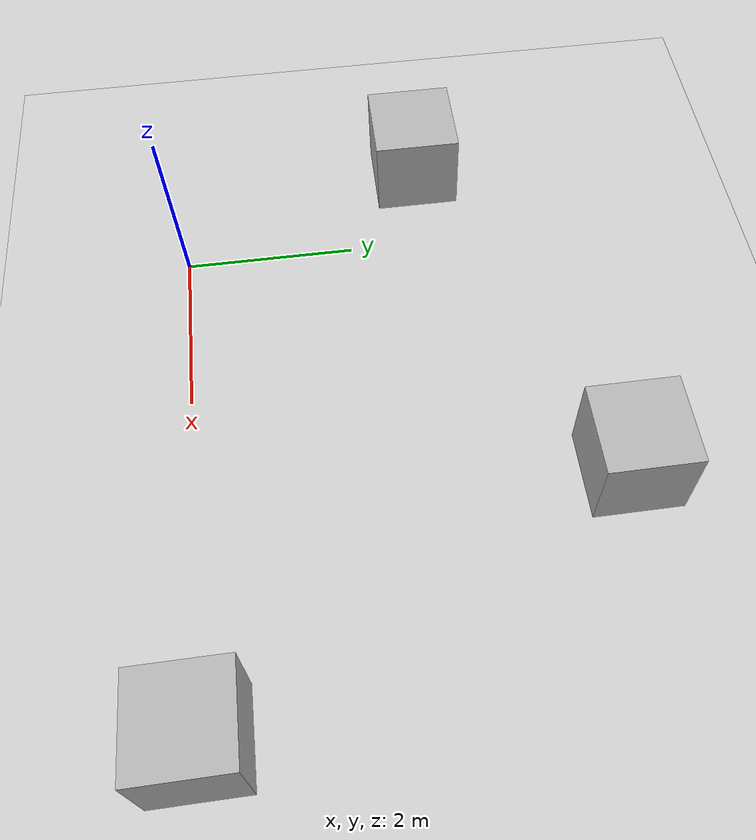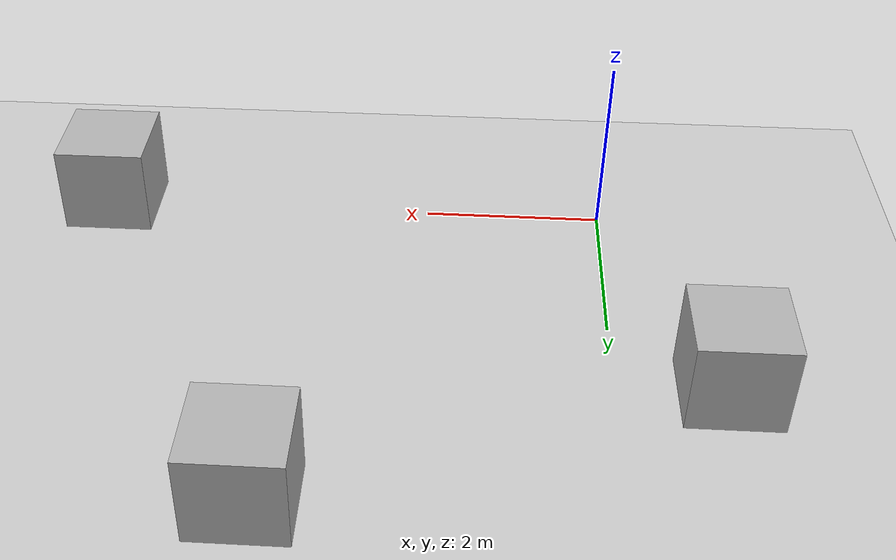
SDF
<?xml version="1.0"?>
<sdf version="1.8">
  <world name="leo_empty">
    <physics name="1ms" type="ignored">
      <max_step_size>0.001</max_step_size>
      <real_time_factor>1.0</real_time_factor>
    </physics>

    <plugin
      filename="ignition-gazebo-physics-system"
      name="ignition::gazebo::systems::Physics">
    </plugin>
    <plugin
      filename="ignition-gazebo-sensors-system"
      name="ignition::gazebo::systems::Sensors">
      <render_engine>ogre2</render_engine>
    </plugin>
    <plugin
      filename="ignition-gazebo-scene-broadcaster-system"
      name="ignition::gazebo::systems::SceneBroadcaster">
    </plugin>
    <plugin
      filename="ignition-gazebo-user-commands-system"
      name="ignition::gazebo::systems::UserCommands">
    </plugin>
    <plugin filename="gz-sim-imu-system"
      name="gz::sim::systems::Imu">
    </plugin>

    <light name="sun" type="directional">
      <cast_shadows>true</cast_shadows>
      <pose>0 0 10 0 0 0</pose>
      <diffuse>0.8 0.8 0.8 1</diffuse>
      <specular>0.2 0.2 0.2 1</specular>
      <attenuation>
        <range>1000</range>
        <constant>0.9</constant>
        <linear>0.01</linear>
        <quadratic>0.001</quadratic>
      </attenuation>
      <direction>-0.5 0.1 -0.9</direction>
    </light>

    <model name="ground_plane">
      <static>true</static>
      <link name="link">
        <collision name="collision">
          <geometry>
            <plane>
              <normal>0 0 1</normal>
              <size>100 100</size>
            </plane>
          </geometry>
          <surface>
            <friction>
              <ode>
                <mu>50</mu>
              </ode>
              <bullet>
                <friction>1</friction>
                <friction2>1</friction2>
                <rolling_friction>0.1</rolling_friction>
              </bullet>
            </friction>
          </surface>
        </collision>
        <visual name="visual">
          <geometry>
            <plane>
              <normal>0 0 1</normal>
              <size>100 100</size>
            </plane>
          </geometry>
          <material>
            <ambient>0.8 0.8 0.8 1</ambient>
            <diffuse>0.8 0.8 0.8 1</diffuse>
            <specular>0.8 0.8 0.8 1</specular>
          </material>
        </visual>
      </link>
    </model>

    <!-- GUI-generated obstacle boxes -->

    <model name='box'>
      <pose>5.72933 0.027533 0.5 0 0 -0</pose>
      <link name='box_link'>
        <inertial>
          <inertia>
            <ixx>0.16666</ixx>
            <ixy>0</ixy>
            <ixz>0</ixz>
            <iyy>0.16666</iyy>
            <iyz>0</iyz>
            <izz>0.16666</izz>
          </inertia>
          <mass>1</mass>
          <pose>0 0 0 0 -0 0</pose>
        </inertial>
        <collision name='box_collision'>
          <geometry>
            <box>
              <size>1 1 1</size>
            </box>
          </geometry>
          <surface>
            <friction>
              <ode/>
            </friction>
            <bounce/>
            <contact/>
          </surface>
        </collision>
        <visual name='box_visual'>
          <geometry>
            <box>
              <size>1 1 1</size>
            </box>
          </geometry>
          <material>
            <ambient>0.3 0.3 0.3 1</ambient>
            <diffuse>0.7 0.7 0.7 1</diffuse>
            <specular>1 1 1 1</specular>
          </material>
        </visual>
        <pose>0 0 0 0 -0 0</pose>
        <enable_wind>false</enable_wind>
      </link>
      <static>true</static>
      <self_collide>false</self_collide>
    </model>

    <model name='box_0'>
      <pose>3.47141 4.65517 0.5 0 0 -0</pose>
      <link name='box_link'>
        <inertial>
          <inertia>
            <ixx>0.16666</ixx>
            <ixy>0</ixy>
            <ixz>0</ixz>
            <iyy>0.16666</iyy>
            <iyz>0</iyz>
            <izz>0.16666</izz>
          </inertia>
          <mass>1</mass>
          <pose>0 0 0 0 -0 0</pose>
        </inertial>
        <collision name='box_collision'>
          <geometry>
            <box>
              <size>1 1 1</size>
            </box>
          </geometry>
          <surface>
            <friction>
              <ode/>
            </friction>
            <bounce/>
            <contact/>
          </surface>
        </collision>
        <visual name='box_visual'>
          <geometry>
            <box>
              <size>1 1 1</size>
            </box>
          </geometry>
          <material>
            <ambient>0.3 0.3 0.3 1</ambient>
            <diffuse>0.7 0.7 0.7 1</diffuse>
            <specular>1 1 1 1</specular>
          </material>
        </visual>
        <pose>0 0 0 0 -0 0</pose>
        <enable_wind>false</enable_wind>
      </link>
      <static>true</static>
      <self_collide>false</self_collide>
    </model>

    <model name='box_1'>
      <pose>-1.14644 2.9291 0.5 0 0 -0</pose>
      <link name='box_link'>
        <inertial>
          <inertia>
            <ixx>0.16666</ixx>
            <ixy>0</ixy>
            <ixz>0</ixz>
            <iyy>0.16666</iyy>
            <iyz>0</iyz>
            <izz>0.16666</izz>
          </inertia>
          <mass>1</mass>
          <pose>0 0 0 0 -0 0</pose>
        </inertial>
        <collision name='box_collision'>
          <geometry>
            <box>
              <size>1 1 1</size>
            </box>
          </geometry>
          <surface>
            <friction>
              <ode/>
            </friction>
            <bounce/>
            <contact/>
          </surface>
        </collision>
        <visual name='box_visual'>
          <geometry>
            <box>
              <size>1 1 1</size>
            </box>
          </geometry>
          <material>
            <ambient>0.3 0.3 0.3 1</ambient>
            <diffuse>0.7 0.7 0.7 1</diffuse>
            <specular>1 1 1 1</specular>
          </material>
        </visual>
        <pose>0 0 0 0 -0 0</pose>
        <enable_wind>false</enable_wind>
      </link>
      <static>true</static>
      <self_collide>false</self_collide>
    </model>
  </world>
</sdf>
